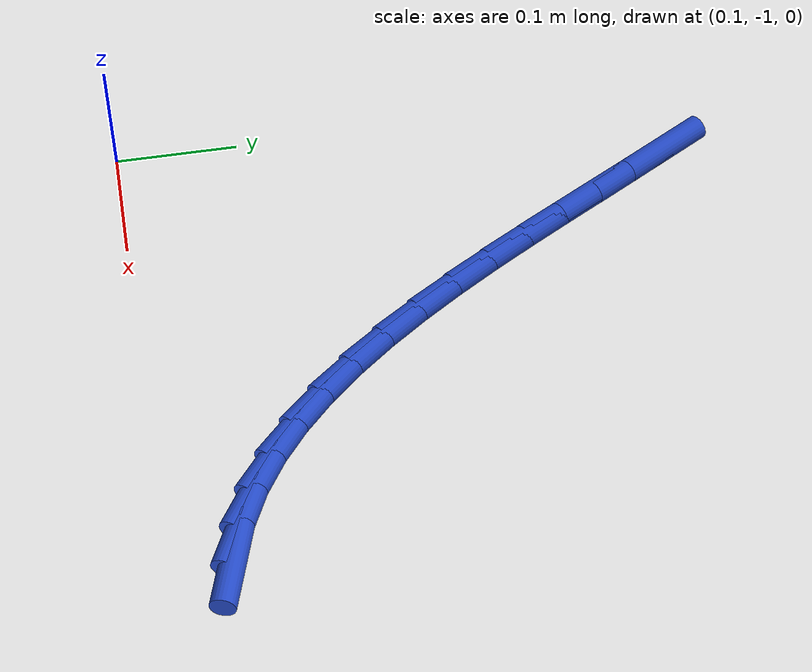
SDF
<sdf version="1.6">
 <world name="default">
  <model name="ground_plane">
   <static>1</static>
   <link name="link">
    <collision name="collision">
     <geometry><plane><normal>0 0 1</normal><size>100 100</size></plane></geometry>
     <surface><friction><ode><mu>100</mu><mu2>50</mu2></ode></friction></surface>
    </collision>
    <visual name="visual">
     <cast_shadows>0</cast_shadows>
     <geometry><plane><normal>0 0 1</normal><size>100 100</size></plane></geometry>
     <material>
      <script><uri>file://media/materials/scripts/gazebo.material</uri><name>Gazebo/WhiteGlow</name></script>
     </material>
    </visual>
   </link>
  </model>
  <model name="line">
   <link name="link_168">
    <pose>0.515434391569196 -0.9510204076387564 0.01 0 1.57 -0.30229924405570435</pose>
    <collision name="collision">
     <geometry><cylinder><radius>0.01</radius><length>0.08</length></cylinder></geometry>
    </collision>
    <visual name="visual">
     <material>
      <script><name>Gazebo/Blue</name><uri>file://media/materials/scripts/gazebo.material</uri></script>
     </material>
     <geometry><cylinder><radius>0.01</radius><length>0.08</length></cylinder></geometry>
    </visual>
   </link>
   <link name="link_169">
    <pose>0.48509137753218723 -0.9415577171056423 0.01 0 1.57 -0.4394647673762563</pose>
    <collision name="collision">
     <geometry><cylinder><radius>0.01</radius><length>0.08</length></cylinder></geometry>
    </collision>
    <visual name="visual">
     <material>
      <script><name>Gazebo/Blue</name><uri>file://media/materials/scripts/gazebo.material</uri></script>
     </material>
     <geometry><cylinder><radius>0.01</radius><length>0.08</length></cylinder></geometry>
    </visual>
   </link>
   <link name="link_170">
    <pose>0.45622791531833645 -0.9279882290141753 0.01 0 1.57 -0.5615815798025922</pose>
    <collision name="collision">
     <geometry><cylinder><radius>0.01</radius><length>0.08</length></cylinder></geometry>
    </collision>
    <visual name="visual">
     <material>
      <script><name>Gazebo/Blue</name><uri>file://media/materials/scripts/gazebo.material</uri></script>
     </material>
     <geometry><cylinder><radius>0.01</radius><length>0.08</length></cylinder></geometry>
    </visual>
   </link>
   <link name="link_171">
    <pose>0.42874578473330544 -0.9106977100160258 0.01 0 1.57 -0.6669323226339717</pose>
    <collision name="collision">
     <geometry><cylinder><radius>0.01</radius><length>0.08</length></cylinder></geometry>
    </collision>
    <visual name="visual">
     <material>
      <script><name>Gazebo/Blue</name><uri>file://media/materials/scripts/gazebo.material</uri></script>
     </material>
     <geometry><cylinder><radius>0.01</radius><length>0.08</length></cylinder></geometry>
    </visual>
   </link>
   <link name="link_172">
    <pose>0.4025467655827562 -0.8900719267628653 0.01 0 1.57 -0.7557944546785687</pose>
    <collision name="collision">
     <geometry><cylinder><radius>0.01</radius><length>0.08</length></cylinder></geometry>
    </collision>
    <visual name="visual">
     <material>
      <script><name>Gazebo/Blue</name><uri>file://media/materials/scripts/gazebo.material</uri></script>
     </material>
     <geometry><cylinder><radius>0.01</radius><length>0.08</length></cylinder></geometry>
    </visual>
   </link>
   <link name="link_173">
    <pose>0.3775326376723505 -0.8664966459063648 0.01 0 1.57 -0.8295418445724022</pose>
    <collision name="collision">
     <geometry><cylinder><radius>0.01</radius><length>0.08</length></cylinder></geometry>
    </collision>
    <visual name="visual">
     <material>
      <script><name>Gazebo/Blue</name><uri>file://media/materials/scripts/gazebo.material</uri></script>
     </material>
     <geometry><cylinder><radius>0.01</radius><length>0.08</length></cylinder></geometry>
    </visual>
   </link>
   <link name="link_174">
    <pose>0.3536051808077505 -0.8403576340981956 0.01 0 1.57 -0.8899394065713718</pose>
    <collision name="collision">
     <geometry><cylinder><radius>0.01</radius><length>0.08</length></cylinder></geometry>
    </collision>
    <visual name="visual">
     <material>
      <script><name>Gazebo/Blue</name><uri>file://media/materials/scripts/gazebo.material</uri></script>
     </material>
     <geometry><cylinder><radius>0.01</radius><length>0.08</length></cylinder></geometry>
    </visual>
   </link>
   <link name="link_175">
    <pose>0.33066617479461813 -0.8120406579900297 0.01 0 1.57 -0.9387235194434742</pose>
    <collision name="collision">
     <geometry><cylinder><radius>0.01</radius><length>0.08</length></cylinder></geometry>
    </collision>
    <visual name="visual">
     <material>
      <script><name>Gazebo/Blue</name><uri>file://media/materials/scripts/gazebo.material</uri></script>
     </material>
     <geometry><cylinder><radius>0.01</radius><length>0.08</length></cylinder></geometry>
    </visual>
   </link>
   <link name="link_176">
    <pose>0.3086173994386153 -0.7819314842335376 0.01 0 1.57 -0.9774013684061759</pose>
    <collision name="collision">
     <geometry><cylinder><radius>0.01</radius><length>0.08</length></cylinder></geometry>
    </collision>
    <visual name="visual">
     <material>
      <script><name>Gazebo/Blue</name><uri>file://media/materials/scripts/gazebo.material</uri></script>
     </material>
     <geometry><cylinder><radius>0.01</radius><length>0.08</length></cylinder></geometry>
    </visual>
   </link>
   <link name="link_177">
    <pose>0.287360634545404 -0.7504158794803909 0.01 0 1.57 -1.007177978184339</pose>
    <collision name="collision">
     <geometry><cylinder><radius>0.01</radius><length>0.08</length></cylinder></geometry>
    </collision>
    <visual name="visual">
     <material>
      <script><name>Gazebo/Blue</name><uri>file://media/materials/scripts/gazebo.material</uri></script>
     </material>
     <geometry><cylinder><radius>0.01</radius><length>0.08</length></cylinder></geometry>
    </visual>
   </link>
   <link name="link_178">
    <pose>0.2667976599206462 -0.7178796103822614 0.01 0 1.57 -1.0289437783523956</pose>
    <collision name="collision">
     <geometry><cylinder><radius>0.01</radius><length>0.08</length></cylinder></geometry>
    </collision>
    <visual name="visual">
     <material>
      <script><name>Gazebo/Blue</name><uri>file://media/materials/scripts/gazebo.material</uri></script>
     </material>
     <geometry><cylinder><radius>0.01</radius><length>0.08</length></cylinder></geometry>
    </visual>
   </link>
   <link name="link_179">
    <pose>0.24683025537000378 -0.6847084435908196 0.01 0 1.57 -1.0432828493360762</pose>
    <collision name="collision">
     <geometry><cylinder><radius>0.01</radius><length>0.08</length></cylinder></geometry>
    </collision>
    <visual name="visual">
     <material>
      <script><name>Gazebo/Blue</name><uri>file://media/materials/scripts/gazebo.material</uri></script>
     </material>
     <geometry><cylinder><radius>0.01</radius><length>0.08</length></cylinder></geometry>
    </visual>
   </link>
   <link name="link_180">
    <pose>0.22736020069913868 -0.6512881457577371 0.01 0 1.57 -1.0504802748948383</pose>
    <collision name="collision">
     <geometry><cylinder><radius>0.01</radius><length>0.08</length></cylinder></geometry>
    </collision>
    <visual name="visual">
     <material>
      <script><name>Gazebo/Blue</name><uri>file://media/materials/scripts/gazebo.material</uri></script>
     </material>
     <geometry><cylinder><radius>0.01</radius><length>0.08</length></cylinder></geometry>
    </visual>
   </link>
   <link name="link_181">
    <pose>0.20828927571371295 -0.6180044835346852 0.01 0 1.57 -1.0505176897628303</pose>
    <collision name="collision">
     <geometry><cylinder><radius>0.01</radius><length>0.08</length></cylinder></geometry>
    </collision>
    <visual name="visual">
     <material>
      <script><name>Gazebo/Blue</name><uri>file://media/materials/scripts/gazebo.material</uri></script>
     </material>
     <geometry><cylinder><radius>0.01</radius><length>0.08</length></cylinder></geometry>
    </visual>
   </link>
   <link name="link_182">
    <pose>0.18951927995781262 -0.5852431785642216 0.01 0 1.57 -1.0458342669503558</pose>
    <collision name="collision">
     <geometry><cylinder><radius>0.01</radius><length>0.08</length></cylinder></geometry>
    </collision>
    <visual name="visual">
     <material>
      <script><name>Gazebo/Blue</name><uri>file://media/materials/scripts/gazebo.material</uri></script>
     </material>
     <geometry><cylinder><radius>0.01</radius><length>0.08</length></cylinder></geometry>
    </visual>
   </link>
   <link name="link_183">
    <pose>0.171003227838895 -0.5532731683116552 0.01 0 1.57 -1.0450962123553431</pose>
    <collision name="collision">
     <geometry><cylinder><radius>0.01</radius><length>0.08</length></cylinder></geometry>
    </collision>
    <visual name="visual">
     <material>
      <script><name>Gazebo/Blue</name><uri>file://media/materials/scripts/gazebo.material</uri></script>
     </material>
     <geometry><cylinder><radius>0.01</radius><length>0.08</length></cylinder></geometry>
    </visual>
   </link>
  </model>
 </world>
</sdf>
